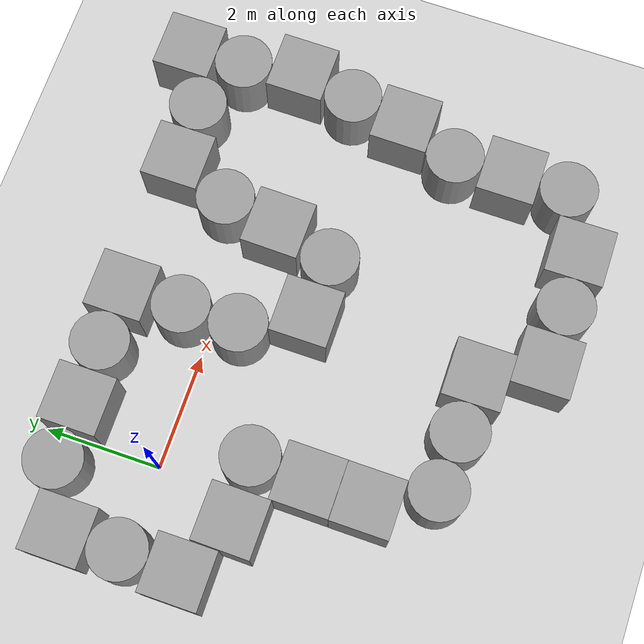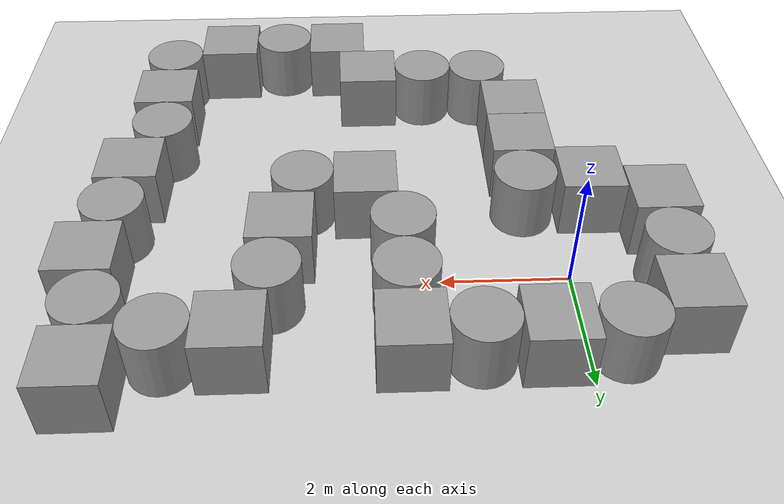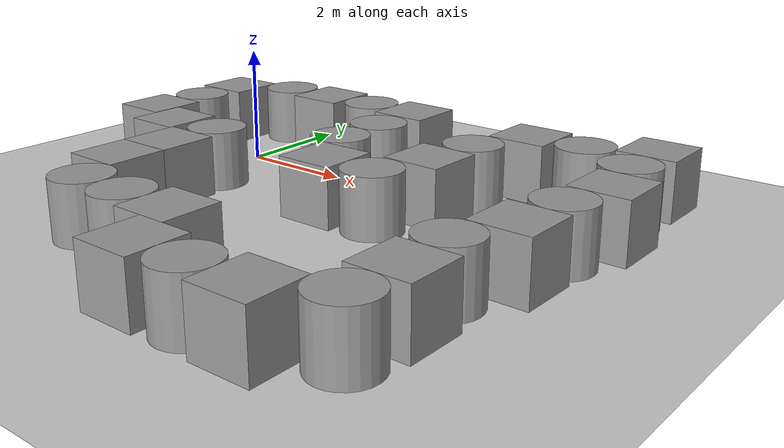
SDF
<sdf version="1.4">
 <world name="default">
  <light name="sun" type="directional">
   <pose>0 0 10 0 -0 0</pose>
   <diffuse>0.8 0.8 0.8 1</diffuse>
   <specular>0.2 0.2 0.2 1</specular>
   <attenuation>
    <range>1000</range>
    <constant>0.9</constant>
    <linear>0.01</linear>
    <quadratic>0.001</quadratic>
   </attenuation>
   <direction>-0.5 0.1 -0.9</direction>
  </light>
  <model name="ground_plane">
   <static>1</static>
   <link name="link">
    <collision name="collision">
     <geometry><plane><normal>0 0 1</normal><size>100 100</size></plane></geometry>
     <surface><friction><ode><mu>100</mu><mu2>50</mu2></ode></friction></surface>
    </collision>
    <visual name="visual">
     <cast_shadows>0</cast_shadows>
     <geometry><plane><normal>0 0 1</normal><size>100 100</size></plane></geometry>
     <material>
      <script><uri>file://media/materials/scripts/gazebo.material</uri><name>Gazebo/Grey</name></script>
     </material>
    </visual>
    <velocity_decay><linear>0</linear><angular>0</angular></velocity_decay>
   </link>
  </model>
  <physics type="ode">
   <max_step_size>0.01</max_step_size>
   <real_time_factor>1</real_time_factor>
   <real_time_update_rate>100</real_time_update_rate>
   <gravity>0 0 -9.8</gravity>
  </physics>
  <scene><ambient>0.4 0.4 0.4 1</ambient><background>0.7 0.7 0.7 1</background><shadows>1</shadows></scene>
  <model name="unit_box_1">
   <pose>-1.51062 -1.00007 0.5 0 -0 -9.9e-05</pose>
   <link name="link">
    <inertial>
     <mass>1</mass>
     <inertia><ixx>1</ixx><ixy>0</ixy><ixz>0</ixz><iyy>1</iyy><iyz>0</iyz><izz>1</izz></inertia>
    </inertial>
    <collision name="collision"><geometry><box><size>1 1 1</size></box></geometry></collision>
    <visual name="visual">
     <geometry><box><size>1 1 1</size></box></geometry>
     <material>
      <script><uri>file://media/materials/scripts/gazebo.material</uri><name>Gazebo/Grey</name></script>
     </material>
    </visual>
    <velocity_decay><linear>0</linear><angular>0</angular></velocity_decay>
   </link>
   <static>0</static>
  </model>
  <model name="unit_cylinder_1">
   <pose>-1.49849 -8e-06 0.49912 -0 -0 -8e-05</pose>
   <link name="link">
    <inertial>
     <mass>1</mass>
     <inertia><ixx>1</ixx><ixy>0</ixy><ixz>0</ixz><iyy>1</iyy><iyz>0</iyz><izz>1</izz></inertia>
    </inertial>
    <collision name="collision">
     <geometry><cylinder><radius>0.5</radius><length>1</length></cylinder></geometry>
    </collision>
    <visual name="visual">
     <geometry><cylinder><radius>0.5</radius><length>1</length></cylinder></geometry>
     <material>
      <script><uri>file://media/materials/scripts/gazebo.material</uri><name>Gazebo/Grey</name></script>
     </material>
    </visual>
    <velocity_decay><linear>0</linear><angular>0</angular></velocity_decay>
   </link>
   <static>0</static>
  </model>
  <model name="unit_box_2">
   <pose>-1.49961 0.999993 0.5 0 -0 0.002588</pose>
   <link name="link">
    <inertial>
     <mass>1</mass>
     <inertia><ixx>1</ixx><ixy>0</ixy><ixz>0</ixz><iyy>1</iyy><iyz>0</iyz><izz>1</izz></inertia>
    </inertial>
    <collision name="collision"><geometry><box><size>1 1 1</size></box></geometry></collision>
    <visual name="visual">
     <geometry><box><size>1 1 1</size></box></geometry>
     <material>
      <script><uri>file://media/materials/scripts/gazebo.material</uri><name>Gazebo/Grey</name></script>
     </material>
    </visual>
    <velocity_decay><linear>0</linear><angular>0</angular></velocity_decay>
   </link>
   <static>0</static>
  </model>
  <model name="unit_cylinder_2">
   <pose>-0.500702 1.4898 0.49912 -0 -0 -0.000423</pose>
   <link name="link">
    <inertial>
     <mass>1</mass>
     <inertia><ixx>1</ixx><ixy>0</ixy><ixz>0</ixz><iyy>1</iyy><iyz>0</iyz><izz>1</izz></inertia>
    </inertial>
    <collision name="collision">
     <geometry><cylinder><radius>0.5</radius><length>1</length></cylinder></geometry>
    </collision>
    <visual name="visual">
     <geometry><cylinder><radius>0.5</radius><length>1</length></cylinder></geometry>
     <material>
      <script><uri>file://media/materials/scripts/gazebo.material</uri><name>Gazebo/Grey</name></script>
     </material>
    </visual>
    <velocity_decay><linear>0</linear><angular>0</angular></velocity_decay>
   </link>
   <static>0</static>
  </model>
  <model name="unit_box_3">
   <pose>0.527437 1.49918 0.5 0 -0 0</pose>
   <link name="link">
    <inertial>
     <mass>1</mass>
     <inertia><ixx>1</ixx><ixy>0</ixy><ixz>0</ixz><iyy>1</iyy><iyz>0</iyz><izz>1</izz></inertia>
    </inertial>
    <collision name="collision"><geometry><box><size>1 1 1</size></box></geometry></collision>
    <visual name="visual">
     <geometry><box><size>1 1 1</size></box></geometry>
     <material>
      <script><uri>file://media/materials/scripts/gazebo.material</uri><name>Gazebo/Grey</name></script>
     </material>
    </visual>
    <velocity_decay><linear>0</linear><angular>0</angular></velocity_decay>
   </link>
   <static>0</static>
  </model>
  <model name="unit_cylinder_3">
   <pose>1.5317 1.50678 0.49912 -0 -0 -0</pose>
   <link name="link">
    <inertial>
     <mass>1</mass>
     <inertia><ixx>1</ixx><ixy>0</ixy><ixz>0</ixz><iyy>1</iyy><iyz>0</iyz><izz>1</izz></inertia>
    </inertial>
    <collision name="collision">
     <geometry><cylinder><radius>0.5</radius><length>1</length></cylinder></geometry>
    </collision>
    <visual name="visual">
     <geometry><cylinder><radius>0.5</radius><length>1</length></cylinder></geometry>
     <material>
      <script><uri>file://media/materials/scripts/gazebo.material</uri><name>Gazebo/Grey</name></script>
     </material>
    </visual>
    <velocity_decay><linear>0</linear><angular>0</angular></velocity_decay>
   </link>
   <static>0</static>
  </model>
  <model name="unit_box_4">
   <pose>2.53181 1.51028 0.5 0 -0 1.9e-05</pose>
   <link name="link">
    <inertial>
     <mass>1</mass>
     <inertia><ixx>1</ixx><ixy>0</ixy><ixz>0</ixz><iyy>1</iyy><iyz>0</iyz><izz>1</izz></inertia>
    </inertial>
    <collision name="collision"><geometry><box><size>1 1 1</size></box></geometry></collision>
    <visual name="visual">
     <geometry><box><size>1 1 1</size></box></geometry>
     <material>
      <script><uri>file://media/materials/scripts/gazebo.material</uri><name>Gazebo/Grey</name></script>
     </material>
    </visual>
    <velocity_decay><linear>0</linear><angular>0</angular></velocity_decay>
   </link>
   <static>0</static>
  </model>
  <model name="unit_box_5">
   <pose>-0.497378 -1.50988 0.5 0 -0 -0.011525</pose>
   <link name="link">
    <inertial>
     <mass>1</mass>
     <inertia><ixx>1</ixx><ixy>0</ixy><ixz>0</ixz><iyy>1</iyy><iyz>0</iyz><izz>1</izz></inertia>
    </inertial>
    <collision name="collision"><geometry><box><size>1 1 1</size></box></geometry></collision>
    <visual name="visual">
     <geometry><box><size>1 1 1</size></box></geometry>
     <material>
      <script><uri>file://media/materials/scripts/gazebo.material</uri><name>Gazebo/Grey</name></script>
     </material>
    </visual>
    <velocity_decay><linear>0</linear><angular>0</angular></velocity_decay>
   </link>
   <static>0</static>
  </model>
  <model name="unit_cylinder_4">
   <pose>0.552987 -1.45205 0.49912 0 -0 0.004726</pose>
   <link name="link">
    <inertial>
     <mass>1</mass>
     <inertia><ixx>1</ixx><ixy>0</ixy><ixz>0</ixz><iyy>1</iyy><iyz>0</iyz><izz>1</izz></inertia>
    </inertial>
    <collision name="collision">
     <geometry><cylinder><radius>0.5</radius><length>1</length></cylinder></geometry>
    </collision>
    <visual name="visual">
     <geometry><cylinder><radius>0.5</radius><length>1</length></cylinder></geometry>
     <material>
      <script><uri>file://media/materials/scripts/gazebo.material</uri><name>Gazebo/Grey</name></script>
     </material>
    </visual>
    <velocity_decay><linear>0</linear><angular>0</angular></velocity_decay>
   </link>
   <static>0</static>
  </model>
  <model name="unit_cylinder_5">
   <pose>2.54214 0.480497 0.49912 -0 -0 -0.000717</pose>
   <link name="link">
    <inertial>
     <mass>1</mass>
     <inertia><ixx>1</ixx><ixy>0</ixy><ixz>0</ixz><iyy>1</iyy><iyz>0</iyz><izz>1</izz></inertia>
    </inertial>
    <collision name="collision">
     <geometry><cylinder><radius>0.5</radius><length>1</length></cylinder></geometry>
    </collision>
    <visual name="visual">
     <geometry><cylinder><radius>0.5</radius><length>1</length></cylinder></geometry>
     <material>
      <script><uri>file://media/materials/scripts/gazebo.material</uri><name>Gazebo/Grey</name></script>
     </material>
    </visual>
    <velocity_decay><linear>0</linear><angular>0</angular></velocity_decay>
   </link>
   <static>0</static>
  </model>
  <model name="unit_cylinder_6">
   <pose>2.54688 -0.520138 0.49912 -0 -0 -0.022643</pose>
   <link name="link">
    <inertial>
     <mass>1</mass>
     <inertia><ixx>1</ixx><ixy>0</ixy><ixz>0</ixz><iyy>1</iyy><iyz>0</iyz><izz>1</izz></inertia>
    </inertial>
    <collision name="collision">
     <geometry><cylinder><radius>0.5</radius><length>1</length></cylinder></geometry>
    </collision>
    <visual name="visual">
     <geometry><cylinder><radius>0.5</radius><length>1</length></cylinder></geometry>
     <material>
      <script><uri>file://media/materials/scripts/gazebo.material</uri><name>Gazebo/Grey</name></script>
     </material>
    </visual>
    <velocity_decay><linear>0</linear><angular>0</angular></velocity_decay>
   </link>
   <static>0</static>
  </model>
  <model name="unit_box_7">
   <pose>3.10001 -1.5172 0.5 0 -0 0.000275</pose>
   <link name="link">
    <inertial>
     <mass>1</mass>
     <inertia><ixx>1</ixx><ixy>0</ixy><ixz>0</ixz><iyy>1</iyy><iyz>0</iyz><izz>1</izz></inertia>
    </inertial>
    <collision name="collision"><geometry><box><size>1 1 1</size></box></geometry></collision>
    <visual name="visual">
     <geometry><box><size>1 1 1</size></box></geometry>
     <material>
      <script><uri>file://media/materials/scripts/gazebo.material</uri><name>Gazebo/Grey</name></script>
     </material>
    </visual>
    <velocity_decay><linear>0</linear><angular>0</angular></velocity_decay>
   </link>
   <static>0</static>
  </model>
  <model name="unit_box_8">
   <pose>0.495543 -2.45206 0.5 0 -0 -0.004248</pose>
   <link name="link">
    <inertial>
     <mass>1</mass>
     <inertia><ixx>1</ixx><ixy>0</ixy><ixz>0</ixz><iyy>1</iyy><iyz>0</iyz><izz>1</izz></inertia>
    </inertial>
    <collision name="collision"><geometry><box><size>1 1 1</size></box></geometry></collision>
    <visual name="visual">
     <geometry><box><size>1 1 1</size></box></geometry>
     <material>
      <script><uri>file://media/materials/scripts/gazebo.material</uri><name>Gazebo/Grey</name></script>
     </material>
    </visual>
    <velocity_decay><linear>0</linear><angular>0</angular></velocity_decay>
   </link>
   <static>0</static>
  </model>
  <model name="unit_box_9">
   <pose>0.490469 -3.45364 0.5 0 -0 -0.001162</pose>
   <link name="link">
    <inertial>
     <mass>1</mass>
     <inertia><ixx>1</ixx><ixy>0</ixy><ixz>0</ixz><iyy>1</iyy><iyz>0</iyz><izz>1</izz></inertia>
    </inertial>
    <collision name="collision"><geometry><box><size>1 1 1</size></box></geometry></collision>
    <visual name="visual">
     <geometry><box><size>1 1 1</size></box></geometry>
     <material>
      <script><uri>file://media/materials/scripts/gazebo.material</uri><name>Gazebo/Grey</name></script>
     </material>
    </visual>
    <velocity_decay><linear>0</linear><angular>0</angular></velocity_decay>
   </link>
   <static>0</static>
  </model>
  <model name="unit_cylinder_8">
   <pose>1.00064 -4.45429 0.49912 -0 -0 -0.000269</pose>
   <link name="link">
    <inertial>
     <mass>1</mass>
     <inertia><ixx>1</ixx><ixy>0</ixy><ixz>0</ixz><iyy>1</iyy><iyz>0</iyz><izz>1</izz></inertia>
    </inertial>
    <collision name="collision">
     <geometry><cylinder><radius>0.5</radius><length>1</length></cylinder></geometry>
    </collision>
    <visual name="visual">
     <geometry><cylinder><radius>0.5</radius><length>1</length></cylinder></geometry>
     <material>
      <script><uri>file://media/materials/scripts/gazebo.material</uri><name>Gazebo/Grey</name></script>
     </material>
    </visual>
    <velocity_decay><linear>0</linear><angular>0</angular></velocity_decay>
   </link>
   <static>0</static>
  </model>
  <model name="unit_cylinder_9">
   <pose>1.99994 -4.49259 0.49912 0 -0 0.000138</pose>
   <link name="link">
    <inertial>
     <mass>1</mass>
     <inertia><ixx>1</ixx><ixy>0</ixy><ixz>0</ixz><iyy>1</iyy><iyz>0</iyz><izz>1</izz></inertia>
    </inertial>
    <collision name="collision">
     <geometry><cylinder><radius>0.5</radius><length>1</length></cylinder></geometry>
    </collision>
    <visual name="visual">
     <geometry><cylinder><radius>0.5</radius><length>1</length></cylinder></geometry>
     <material>
      <script><uri>file://media/materials/scripts/gazebo.material</uri><name>Gazebo/Grey</name></script>
     </material>
    </visual>
    <velocity_decay><linear>0</linear><angular>0</angular></velocity_decay>
   </link>
   <static>0</static>
  </model>
  <model name="unit_box_11">
   <pose>3.00002 -4.50458 0.5 0 -0 0.002501</pose>
   <link name="link">
    <inertial>
     <mass>1</mass>
     <inertia><ixx>1</ixx><ixy>0</ixy><ixz>0</ixz><iyy>1</iyy><iyz>0</iyz><izz>1</izz></inertia>
    </inertial>
    <collision name="collision"><geometry><box><size>1 1 1</size></box></geometry></collision>
    <visual name="visual">
     <geometry><box><size>1 1 1</size></box></geometry>
     <material>
      <script><uri>file://media/materials/scripts/gazebo.material</uri><name>Gazebo/Grey</name></script>
     </material>
    </visual>
    <velocity_decay><linear>0</linear><angular>0</angular></velocity_decay>
   </link>
   <static>0</static>
  </model>
  <model name="unit_box_12">
   <pose>3.55731 -5.50318 0.5 0 -0 0.002686</pose>
   <link name="link">
    <inertial>
     <mass>1</mass>
     <inertia><ixx>1</ixx><ixy>0</ixy><ixz>0</ixz><iyy>1</iyy><iyz>0</iyz><izz>1</izz></inertia>
    </inertial>
    <collision name="collision"><geometry><box><size>1 1 1</size></box></geometry></collision>
    <visual name="visual">
     <geometry><box><size>1 1 1</size></box></geometry>
     <material>
      <script><uri>file://media/materials/scripts/gazebo.material</uri><name>Gazebo/Grey</name></script>
     </material>
    </visual>
    <velocity_decay><linear>0</linear><angular>0</angular></velocity_decay>
   </link>
   <static>0</static>
  </model>
  <model name="unit_cylinder_10">
   <pose>4.55739 -5.52127 0.49912 -0 -0 -0.001035</pose>
   <link name="link">
    <inertial>
     <mass>1</mass>
     <inertia><ixx>1</ixx><ixy>0</ixy><ixz>0</ixz><iyy>1</iyy><iyz>0</iyz><izz>1</izz></inertia>
    </inertial>
    <collision name="collision">
     <geometry><cylinder><radius>0.5</radius><length>1</length></cylinder></geometry>
    </collision>
    <visual name="visual">
     <geometry><cylinder><radius>0.5</radius><length>1</length></cylinder></geometry>
     <material>
      <script><uri>file://media/materials/scripts/gazebo.material</uri><name>Gazebo/Grey</name></script>
     </material>
    </visual>
    <velocity_decay><linear>0</linear><angular>0</angular></velocity_decay>
   </link>
   <static>0</static>
  </model>
  <model name="unit_box_13">
   <pose>5.55716 -5.48948 0.5 0 -0 0.008526</pose>
   <link name="link">
    <inertial>
     <mass>1</mass>
     <inertia><ixx>1</ixx><ixy>0</ixy><ixz>0</ixz><iyy>1</iyy><iyz>0</iyz><izz>1</izz></inertia>
    </inertial>
    <collision name="collision"><geometry><box><size>1 1 1</size></box></geometry></collision>
    <visual name="visual">
     <geometry><box><size>1 1 1</size></box></geometry>
     <material>
      <script><uri>file://media/materials/scripts/gazebo.material</uri><name>Gazebo/Grey</name></script>
     </material>
    </visual>
    <velocity_decay><linear>0</linear><angular>0</angular></velocity_decay>
   </link>
   <static>0</static>
  </model>
  <model name="unit_cylinder_11">
   <pose>6.55315 -5.00243 0.49912 -0 -0 -0.00168</pose>
   <link name="link">
    <inertial>
     <mass>1</mass>
     <inertia><ixx>1</ixx><ixy>0</ixy><ixz>0</ixz><iyy>1</iyy><iyz>0</iyz><izz>1</izz></inertia>
    </inertial>
    <collision name="collision">
     <geometry><cylinder><radius>0.5</radius><length>1</length></cylinder></geometry>
    </collision>
    <visual name="visual">
     <geometry><cylinder><radius>0.5</radius><length>1</length></cylinder></geometry>
     <material>
      <script><uri>file://media/materials/scripts/gazebo.material</uri><name>Gazebo/Grey</name></script>
     </material>
    </visual>
    <velocity_decay><linear>0</linear><angular>0</angular></velocity_decay>
   </link>
   <static>0</static>
  </model>
  <model name="unit_box_14">
   <pose>6.57607 -4.00237 0.5 0 -0 0.000543</pose>
   <link name="link">
    <inertial>
     <mass>1</mass>
     <inertia><ixx>1</ixx><ixy>0</ixy><ixz>0</ixz><iyy>1</iyy><iyz>0</iyz><izz>1</izz></inertia>
    </inertial>
    <collision name="collision"><geometry><box><size>1 1 1</size></box></geometry></collision>
    <visual name="visual">
     <geometry><box><size>1 1 1</size></box></geometry>
     <material>
      <script><uri>file://media/materials/scripts/gazebo.material</uri><name>Gazebo/Grey</name></script>
     </material>
    </visual>
    <velocity_decay><linear>0</linear><angular>0</angular></velocity_decay>
   </link>
   <static>0</static>
  </model>
  <model name="unit_cylinder_12">
   <pose>6.51192 -3.00199 0.49912 0 -0 0.001371</pose>
   <link name="link">
    <inertial>
     <mass>1</mass>
     <inertia><ixx>1</ixx><ixy>0</ixy><ixz>0</ixz><iyy>1</iyy><iyz>0</iyz><izz>1</izz></inertia>
    </inertial>
    <collision name="collision">
     <geometry><cylinder><radius>0.5</radius><length>1</length></cylinder></geometry>
    </collision>
    <visual name="visual">
     <geometry><cylinder><radius>0.5</radius><length>1</length></cylinder></geometry>
     <material>
      <script><uri>file://media/materials/scripts/gazebo.material</uri><name>Gazebo/Grey</name></script>
     </material>
    </visual>
    <velocity_decay><linear>0</linear><angular>0</angular></velocity_decay>
   </link>
   <static>0</static>
  </model>
  <model name="unit_box_15">
   <pose>6.89745 -2.00456 0.5 0 -0 -0.00737</pose>
   <link name="link">
    <inertial>
     <mass>1</mass>
     <inertia><ixx>1</ixx><ixy>0</ixy><ixz>0</ixz><iyy>1</iyy><iyz>0</iyz><izz>1</izz></inertia>
    </inertial>
    <collision name="collision"><geometry><box><size>1 1 1</size></box></geometry></collision>
    <visual name="visual">
     <geometry><box><size>1 1 1</size></box></geometry>
     <material>
      <script><uri>file://media/materials/scripts/gazebo.material</uri><name>Gazebo/Grey</name></script>
     </material>
    </visual>
    <velocity_decay><linear>0</linear><angular>0</angular></velocity_decay>
   </link>
   <static>0</static>
  </model>
  <model name="unit_cylinder_13">
   <pose>4.1022 -1.57579 0.49912 0 -0 0.016153</pose>
   <link name="link">
    <inertial>
     <mass>1</mass>
     <inertia><ixx>1</ixx><ixy>0</ixy><ixz>0</ixz><iyy>1</iyy><iyz>0</iyz><izz>1</izz></inertia>
    </inertial>
    <collision name="collision">
     <geometry><cylinder><radius>0.5</radius><length>1</length></cylinder></geometry>
    </collision>
    <visual name="visual">
     <geometry><cylinder><radius>0.5</radius><length>1</length></cylinder></geometry>
     <material>
      <script><uri>file://media/materials/scripts/gazebo.material</uri><name>Gazebo/Grey</name></script>
     </material>
    </visual>
    <velocity_decay><linear>0</linear><angular>0</angular></velocity_decay>
   </link>
   <static>0</static>
  </model>
  <model name="unit_box_17">
   <pose>4.40303 -0.560233 0.5 0 -0 -0.018336</pose>
   <link name="link">
    <inertial>
     <mass>1</mass>
     <inertia><ixx>1</ixx><ixy>0</ixy><ixz>0</ixz><iyy>1</iyy><iyz>0</iyz><izz>1</izz></inertia>
    </inertial>
    <collision name="collision"><geometry><box><size>1 1 1</size></box></geometry></collision>
    <visual name="visual">
     <geometry><box><size>1 1 1</size></box></geometry>
     <material>
      <script><uri>file://media/materials/scripts/gazebo.material</uri><name>Gazebo/Grey</name></script>
     </material>
    </visual>
    <velocity_decay><linear>0</linear><angular>0</angular></velocity_decay>
   </link>
   <static>0</static>
  </model>
  <model name="unit_cylinder_14">
   <pose>7.00303 -1.00531 0.49912 0 -0 0.003412</pose>
   <link name="link">
    <inertial>
     <mass>1</mass>
     <inertia><ixx>1</ixx><ixy>0</ixy><ixz>0</ixz><iyy>1</iyy><iyz>0</iyz><izz>1</izz></inertia>
    </inertial>
    <collision name="collision">
     <geometry><cylinder><radius>0.5</radius><length>1</length></cylinder></geometry>
    </collision>
    <visual name="visual">
     <geometry><cylinder><radius>0.5</radius><length>1</length></cylinder></geometry>
     <material>
      <script><uri>file://media/materials/scripts/gazebo.material</uri><name>Gazebo/Grey</name></script>
     </material>
    </visual>
    <velocity_decay><linear>0</linear><angular>0</angular></velocity_decay>
   </link>
   <static>0</static>
  </model>
  <model name="unit_box_18">
   <pose>7.23206 -0.005905 0.5 0 -0 -0.004539</pose>
   <link name="link">
    <inertial>
     <mass>1</mass>
     <inertia><ixx>1</ixx><ixy>0</ixy><ixz>0</ixz><iyy>1</iyy><iyz>0</iyz><izz>1</izz></inertia>
    </inertial>
    <collision name="collision"><geometry><box><size>1 1 1</size></box></geometry></collision>
    <visual name="visual">
     <geometry><box><size>1 1 1</size></box></geometry>
     <material>
      <script><uri>file://media/materials/scripts/gazebo.material</uri><name>Gazebo/Grey</name></script>
     </material>
    </visual>
    <velocity_decay><linear>0</linear><angular>0</angular></velocity_decay>
   </link>
   <static>0</static>
  </model>
  <model name="unit_cylinder_15">
   <pose>4.54329 0.437391 0.49912 0 -0 0.001472</pose>
   <link name="link">
    <inertial>
     <mass>1</mass>
     <inertia><ixx>1</ixx><ixy>0</ixy><ixz>0</ixz><iyy>1</iyy><iyz>0</iyz><izz>1</izz></inertia>
    </inertial>
    <collision name="collision">
     <geometry><cylinder><radius>0.5</radius><length>1</length></cylinder></geometry>
    </collision>
    <visual name="visual">
     <geometry><cylinder><radius>0.5</radius><length>1</length></cylinder></geometry>
     <material>
      <script><uri>file://media/materials/scripts/gazebo.material</uri><name>Gazebo/Grey</name></script>
     </material>
    </visual>
    <velocity_decay><linear>0</linear><angular>0</angular></velocity_decay>
   </link>
   <static>0</static>
  </model>
  <model name="unit_cylinder_16">
   <pose>7 1.00217 0.49912 -0 -0 -0</pose>
   <link name="link">
    <inertial>
     <mass>1</mass>
     <inertia><ixx>1</ixx><ixy>0</ixy><ixz>0</ixz><iyy>1</iyy><iyz>0</iyz><izz>1</izz></inertia>
    </inertial>
    <collision name="collision">
     <geometry><cylinder><radius>0.5</radius><length>1</length></cylinder></geometry>
    </collision>
    <visual name="visual">
     <geometry><cylinder><radius>0.5</radius><length>1</length></cylinder></geometry>
     <material>
      <script><uri>file://media/materials/scripts/gazebo.material</uri><name>Gazebo/Grey</name></script>
     </material>
    </visual>
    <velocity_decay><linear>0</linear><angular>0</angular></velocity_decay>
   </link>
   <static>0</static>
  </model>
  <model name="unit_box_19">
   <pose>5 1.45996 0.5 0 -0 0</pose>
   <link name="link">
    <inertial>
     <mass>1</mass>
     <inertia><ixx>1</ixx><ixy>0</ixy><ixz>0</ixz><iyy>1</iyy><iyz>0</iyz><izz>1</izz></inertia>
    </inertial>
    <collision name="collision"><geometry><box><size>1 1 1</size></box></geometry></collision>
    <visual name="visual">
     <geometry><box><size>1 1 1</size></box></geometry>
     <material>
      <script><uri>file://media/materials/scripts/gazebo.material</uri><name>Gazebo/Grey</name></script>
     </material>
    </visual>
    <velocity_decay><linear>0</linear><angular>0</angular></velocity_decay>
   </link>
   <static>0</static>
  </model>
  <model name="unit_cylinder_17">
   <pose>6.0002 1.47323 0.49912 -0 -0 -0</pose>
   <link name="link">
    <inertial>
     <mass>1</mass>
     <inertia><ixx>1</ixx><ixy>0</ixy><ixz>0</ixz><iyy>1</iyy><iyz>0</iyz><izz>1</izz></inertia>
    </inertial>
    <collision name="collision">
     <geometry><cylinder><radius>0.5</radius><length>1</length></cylinder></geometry>
    </collision>
    <visual name="visual">
     <geometry><cylinder><radius>0.5</radius><length>1</length></cylinder></geometry>
     <material>
      <script><uri>file://media/materials/scripts/gazebo.material</uri><name>Gazebo/Grey</name></script>
     </material>
    </visual>
    <velocity_decay><linear>0</linear><angular>0</angular></velocity_decay>
   </link>
   <static>0</static>
  </model>
  <model name="unit_box_20">
   <pose>7 2.00229 0.5 0 -0 -2e-06</pose>
   <link name="link">
    <inertial>
     <mass>1</mass>
     <inertia><ixx>1</ixx><ixy>0</ixy><ixz>0</ixz><iyy>1</iyy><iyz>0</iyz><izz>1</izz></inertia>
    </inertial>
    <collision name="collision"><geometry><box><size>1 1 1</size></box></geometry></collision>
    <visual name="visual">
     <geometry><box><size>1 1 1</size></box></geometry>
     <material>
      <script><uri>file://media/materials/scripts/gazebo.material</uri><name>Gazebo/Grey</name></script>
     </material>
    </visual>
    <velocity_decay><linear>0</linear><angular>0</angular></velocity_decay>
   </link>
   <static>0</static>
  </model>
 </world>
</sdf>
